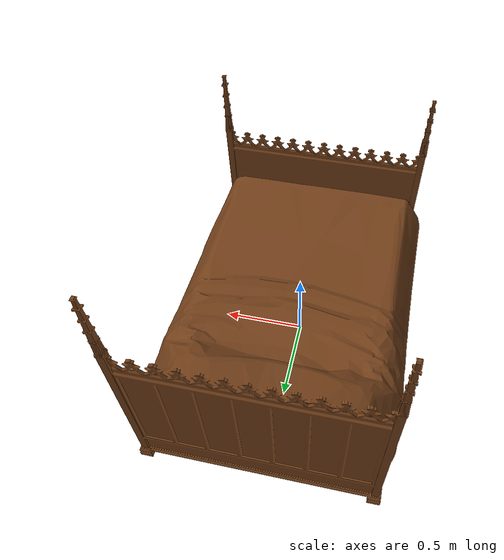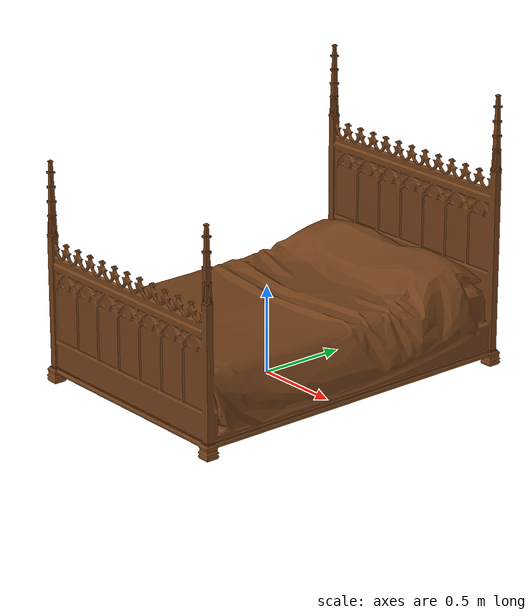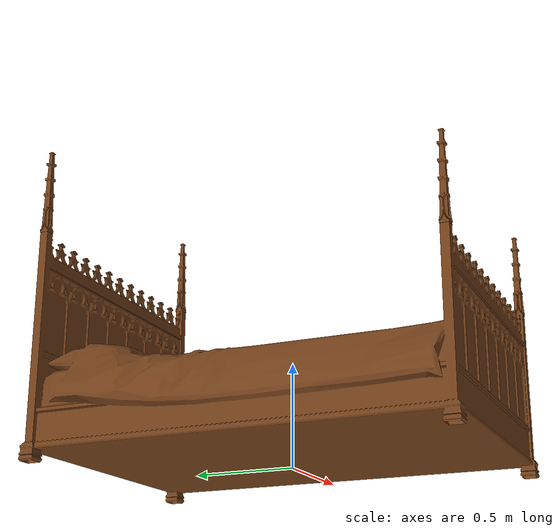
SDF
<?xml version="1.0"?>
<sdf version="1.7">
  <model name="bed">
    <static>true</static>

    <link name="link">

      <visual name="visual">
        <geometry>
          <mesh>
            <uri>GothicBed_01_4k.dae</uri>
          </mesh>
        </geometry>

        <material>
          <ambient>0.45 0.25 0.10 1</ambient>
          <diffuse>0.45 0.25 0.10 1</diffuse>
          <specular>0.05 0.05 0.05 1</specular>
        </material>
      </visual>

      <collision name="collision">
        <geometry>
          <box>
            <size>2.2 1.8 1.0</size>
          </box>
        </geometry>
      </collision>

    </link>

  </model>
</sdf>
